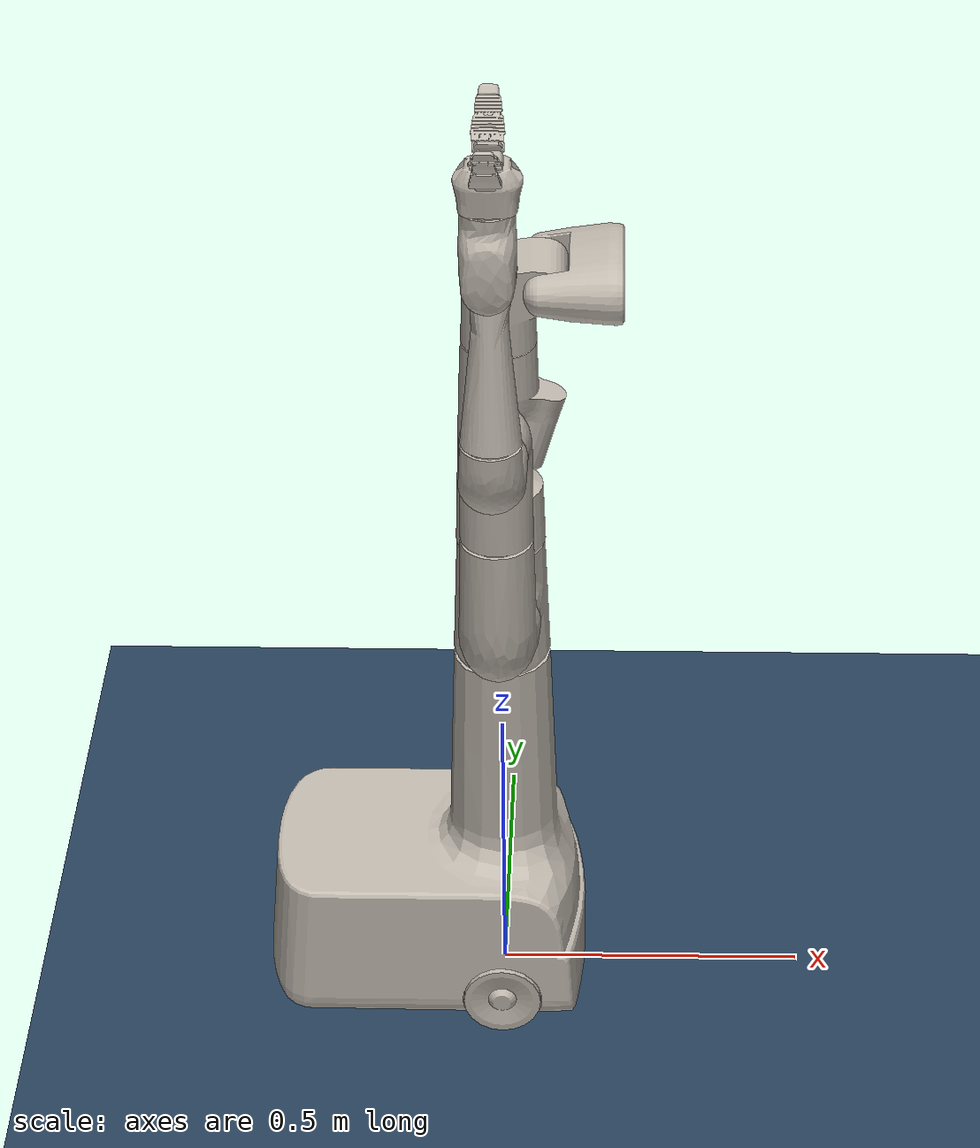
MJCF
<mujoco model="robot scene">
  <include file="robot.xml"/>

  <visual>
    <headlight diffuse="0.6 0.6 0.6" ambient="0.3 0.3 0.3" specular="0 0 0"/>
    <rgba haze="0.15 0.25 0.35 1"/>
    <global azimuth="120" elevation="-20"/>
  </visual>

  <asset>
    <texture type="skybox" builtin="gradient" rgb1="0.3 0.5 0.7" rgb2="0 0 0" width="512" height="3072"/>
    <texture type="2d" name="groundplane" builtin="checker" mark="edge" rgb1="0.2 0.3 0.4" rgb2="0.1 0.2 0.3"
      markrgb="0.8 0.8 0.8" width="300" height="300"/>
    <material name="groundplane" texture="groundplane" texuniform="true" texrepeat="5 5" reflectance="0.2"/>
  </asset>

  <worldbody>
    <light pos="1 -1 1.5" dir="-1 1 -1" diffuse="0.5 0.5 0.5" directional="true"/>
    <geom name="floor" size="0 0 0.05" type="plane" material="groundplane"/>
  </worldbody>
</mujoco>

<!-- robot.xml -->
<mujoco model="robot">
  <compiler angle="radian" assetdir="assets" autolimits="true"/>

  <option timestep="0.004" integrator="implicitfast"/>

  <asset>
    <texture type="2d" name="robot_texture" file="robot_texture.png"/>
    <texture type="2d" name="finger_base_texture" file="finger_base_texture.png"/>
    <texture type="2d" name="finger_tip_texture" file="finger_tip_texture.png"/>
    <material name="robot_mtl" texture="robot_texture"/>
    <material name="finger_base_mtl" texture="finger_base_texture"/>
    <material name="finger_tip_mtl" texture="finger_tip_texture"/>

    <!-- Collision meshes -->
    <mesh file="link_base_0_00.stl"/>
    <mesh file="link_base_0_01.stl"/>
    <mesh file="link_base_1_00.stl"/>
    <mesh file="link_base_1_01.stl"/>
    <mesh file="link_base_1_02.stl"/>
    <mesh file="link_base_1_03.stl"/>
    <mesh file="link_base_1_04.stl"/>
    <mesh file="link_base_1_05.stl"/>
    <mesh file="link_base_1_06.stl"/>
    <mesh file="link_base_1_07.stl"/>
    <mesh file="link_base_1_08.stl"/>
    <mesh file="link_base_1_09.stl"/>
    <mesh file="link_base_1_10.stl"/>
    <mesh file="link_base_1_11.stl"/>
    <mesh file="link_base_1_12.stl"/>
    <mesh file="link_base_1_13.stl"/>
    <mesh file="link_base_1_14.stl"/>
    <mesh file="link_base_1_15.stl"/>
    <mesh file="link_base_1_16.stl"/>
    <mesh file="link_base_1_17.stl"/>
    <mesh file="link_base_1_18.stl"/>
    <mesh file="link_base_1_19.stl"/>
    <mesh file="link_torso_00.stl"/>
    <mesh file="link_torso_01.stl"/>
    <mesh file="link_shoulder.stl"/>
    <mesh file="link_bicep.stl"/>
    <mesh file="link_elbow.stl"/>
    <mesh file="link_forearm.stl"/>
    <mesh file="link_wrist.stl"/>
    <mesh file="link_gripper.stl"/>
    <mesh file="link_head_pan.stl"/>
    <mesh file="link_head_tilt.stl"/>
    <mesh file="link_finger_base.stl"/>
    <mesh file="link_finger_tip.stl"/>

    <!-- Visual meshes -->
    <mesh class="visual" file="link_base_v.obj"/>
    <mesh class="visual" file="link_torso_v.obj"/>
    <mesh class="visual" file="link_shoulder_v.obj"/>
    <mesh class="visual" file="link_bicep_v.obj"/>
    <mesh class="visual" file="link_elbow_v.obj"/>
    <mesh class="visual" file="link_forearm_v.obj"/>
    <mesh class="visual" file="link_wrist_v.obj"/>
    <mesh class="visual" file="link_gripper_v.obj"/>
    <mesh class="visual" file="link_finger_base_v.obj"/>
    <mesh class="visual" file="link_finger_tip_v.obj"/>
    <mesh class="visual" file="link_wheel_v.obj"/>
    <mesh class="visual" file="link_head_pan_v.obj"/>
    <mesh class="visual" file="link_head_tilt_v.obj"/>
  </asset>

  <default>
    <default class="robot">
      <joint damping="10.0" frictionloss="1" armature=".1"/>
      <default class="visual">
        <geom type="mesh" contype="0" conaffinity="0" group="2" material="robot_mtl"/>
      </default>
      <default class="collision">
        <geom type="mesh" rgba="1 1 1 1" group="3" contype="1" conaffinity="1"/>
        <default class="finger_base">
          <geom type="capsule" rgba="1 1 1 1" size="0.015 0.01" quat="1 0 1 0" mass="0.0133245" pos="0 -0.005 0.03"/>
        </default>
        <default class="finger_tip">
          <geom type="capsule" rgba="1 1 1 1" size="0.01 0.008" quat="1 0 1 0" mass="0.0161862"/>
        </default>
      </default>
    </default>
  </default>

  <worldbody>
    <light pos="0 0 3"/>
    <body name="base_link" childclass="robot" pos="0 0 0.06205">
      <!-- geom for base -->
      <geom class="visual" mesh="link_base_v"/>
      <geom class="collision" mesh="link_base_0_00"/>
      <geom class="collision" mesh="link_base_0_01"/>
      <geom class="collision" mesh="link_base_1_00"/>
      <geom class="collision" mesh="link_base_1_01"/>
      <geom class="collision" mesh="link_base_1_02"/>
      <geom class="collision" mesh="link_base_1_03"/>
      <geom class="collision" mesh="link_base_1_04"/>
      <geom class="collision" mesh="link_base_1_05"/>
      <geom class="collision" mesh="link_base_1_06"/>
      <geom class="collision" mesh="link_base_1_07"/>
      <geom class="collision" mesh="link_base_1_08"/>
      <geom class="collision" mesh="link_base_1_09"/>
      <geom class="collision" mesh="link_base_1_10"/>
      <geom class="collision" mesh="link_base_1_11"/>
      <geom class="collision" mesh="link_base_1_12"/>
      <geom class="collision" mesh="link_base_1_13"/>
      <geom class="collision" mesh="link_base_1_14"/>
      <geom class="collision" mesh="link_base_1_15"/>
      <geom class="collision" mesh="link_base_1_16"/>
      <geom class="collision" mesh="link_base_1_17"/>
      <geom class="collision" mesh="link_base_1_18"/>
      <geom class="collision" mesh="link_base_1_19"/>
      <!-- geom for wheels -->
      <geom class="visual" pos="0 0.18283 0" mesh="link_wheel_v"/>
      <geom class="visual" pos="0 -0.18283 0" mesh="link_wheel_v"/>
      <geom class="collision" pos="0 0.18283 0" size="0.06035 0.00925" quat="1 1 0 0" type="cylinder"/>
      <geom class="collision" pos="0 0.18283 0" size="0.06435 5e-06" quat="1 1 0 0" type="cylinder"/>
      <geom class="collision" pos="0 -0.18283 0" size="0.06035 0.00925" quat="1 1 0 0" type="cylinder"/>
      <geom class="collision" pos="0 -0.18283 0" size="0.06435 5e-06" quat="1 1 0 0" type="cylinder"/>
      <geom class="visual" pos="0 0 1.16902" mesh="link_head_pan_v"/>
      <geom class="collision" pos="0 0 1.16902" mesh="link_head_pan"/>
      <geom class="visual" pos="0.07181 0 1.2875" mesh="link_head_tilt_v"/>
      <geom class="collision" pos="0.07181 0 1.2875" mesh="link_head_tilt"/>
      <!-- arm -->
      <body name="link_torso" pos="0 0 0.5945">
        <inertial pos="0 0 0.108398" diaginertia="0.0184592 0.0154173 0.0102031" mass="2.46883"/>
        <joint name="joint_torso" axis="0 0 1" range="-4.49 1.35"/>
        <geom class="visual" mesh="link_torso_v"/>
        <geom class="collision" mesh="link_torso_00"/>
        <geom class="collision" mesh="link_torso_01"/>
        <body name="link_shoulder" pos="0 -0.167289 0.113" gravcomp="1">
          <inertial pos="0.00108994 0.00565406 0.103479" mass="2.08054" diaginertia="0.0162136 0.0158994 0.00367842"/>
          <joint name="joint_shoulder" axis="0 1 0" range="-2.66 3.18"/>
          <geom class="visual" mesh="link_shoulder_v"/>
          <geom class="collision" mesh="link_shoulder"/>
          <body name="link_bicep" pos="0 0.002289 0.215029" gravcomp="1">
            <inertial pos="9.39565e-05 -0.0191308 0.130972" mass="1.3989"
              diaginertia="0.00828463 0.00826766 0.00210613"/>
            <joint name="joint_bicep" axis="0 0 1" range="-2.13 3.71"/>
            <geom class="visual" mesh="link_bicep_v"/>
            <geom class="collision" mesh="link_bicep"/>
            <body name="link_elbow" pos="1.9206e-12 -0.064 0.185036" gravcomp="1">
              <joint name="joint_elbow" axis="0 1 0" range="-2.05 3.79"/>
              <geom class="visual" mesh="link_elbow_v"/>
              <geom class="collision" mesh="link_elbow" mass="0.788999"/>
              <body name="link_forearm" pos="-1.92032e-12 -0.101 0.0914359" gravcomp="1">
                <joint name="joint_forearm" axis="0 0 1" range="-2.92 2.92"/>
                <geom class="visual" mesh="link_forearm_v"/>
                <geom class="collision" mesh="link_forearm" mass="0.819369"/>
                <body name="link_wrist" pos="0 -0.00604 0.2735" gravcomp="1">
                  <site name="wrist" pos="0 0 0.14"/>
                  <joint name="joint_wrist" axis="0 1 0" range="-1.79 1.79"/>
                  <geom class="visual" mesh="link_wrist_v"/>
                  <geom class="collision" mesh="link_wrist" mass="0.543658"/>
                  <body name="link_gripper" pos="0 0.0060384 0.10911" gravcomp="1">
                    <site name="gripper" pos="0 0 0.13" group="5"/>
                    <inertial pos="-3.20302e-05 0.000371384 0.0387883" quat="0.997934 0.0574504 -0.0278948 -0.00699571"
                      mass="0.41474" diaginertia="0.000327698 0.000308611 0.000272392"/>
                    <joint name="joint_gripper" axis="0 0 1" range="-4.49 1.35"/>
                    <geom class="visual" mesh="link_gripper_v"/>
                    <geom class="collision" name="gripper" quat="1 0 0 -1" type="mesh" mesh="link_gripper"/>
                    <!-- right finger -->
                    <body name="link_finger_right" pos="0 0.025 0.05886" quat="0.879969 -0.475032 0 0" gravcomp="1">
                      <joint name="joint_finger_right" axis="1 0 0" range="0.01 1.3" damping="2.0" frictionloss="1"
                        armature=".1"/>
                      <geom class="visual" mesh="link_finger_base_v" material="finger_base_mtl"/>
                      <geom class="collision" mesh="link_finger_base" mass="0.0333245"/>
                      <geom class="finger_base"/>
                      <geom class="finger_base" pos="0 -0.005 0.04"/>
                      <geom class="finger_base" pos="0 -0.005 0.05"/>
                      <body name="link_finger_tip_right" pos="0 -0.0103567 0.0641556" quat="0.995004 0.0998334 0 0"
                        gravcomp="1">
                        <geom class="visual" mesh="link_finger_tip_v" material="finger_tip_mtl"/>
                        <geom class="collision" mesh="link_finger_tip_v" mass="0.0161862"/>
                        <geom class="finger_tip"/>
                        <geom class="finger_tip" pos="0 0 0.01"/>
                        <geom class="finger_tip" pos="0 0 0.02"/>
                        <geom class="finger_tip" pos="0 0 0.03"/>
                        <geom class="finger_tip" pos="0 0 0.04"/>
                      </body>
                    </body>
                    <!-- left finger -->
                    <body name="link_finger_left" pos="0 -0.025 0.05886" quat="0 0 -0.475032 0.879969" gravcomp="1">
                      <joint name="joint_finger_left" axis="1 0 0" range="0.01 1.3" damping="2.0" frictionloss="1"
                        armature=".1"/>
                      <geom class="visual" mesh="link_finger_base_v" material="finger_base_mtl"/>
                      <geom class="collision" mesh="link_finger_base_v" mass="0.0333245"/>
                      <geom class="finger_base"/>
                      <geom class="finger_base" pos="0 -0.005 0.04"/>
                      <geom class="finger_base" pos="0 -0.005 0.05"/>
                      <body name="link_finger_tip_left" pos="0 -0.0103567 0.0641556" quat="0.995004 0.0998334 0 0"
                        gravcomp="1">
                        <geom class="visual" mesh="link_finger_tip_v" material="finger_tip_mtl"/>
                        <geom class="collision" mesh="link_finger_tip" mass="0.0161862"/>
                        <geom class="finger_tip"/>
                        <geom class="finger_tip" pos="0 0 0.01"/>
                        <geom class="finger_tip" pos="0 0 0.02"/>
                        <geom class="finger_tip" pos="0 0 0.03"/>
                        <geom class="finger_tip" pos="0 0 0.04"/>
                      </body>
                    </body>
                  </body>
                  <!-- gripper -->
                </body>
                <!-- wrist -->
              </body>
              <!-- forearm -->
            </body>
            <!-- elbow -->
          </body>
          <!-- bicep -->
        </body>
        <!-- shoulder -->
      </body>
      <!-- torso -->
    </body>
  </worldbody>

  <actuator>
    <position joint="joint_torso" kp="40" ctrlrange="-4.49 1.35" forcerange="-150 150"/>
    <position joint="joint_shoulder" kp="40" ctrlrange="-2.66 3.18" forcerange="-150 150"/>
    <position joint="joint_bicep" kp="40" ctrlrange="-2.13 3.71" forcerange="-30 30"/>
    <position joint="joint_elbow" kp="20" ctrlrange="-2.05 3.79" forcerange="-30 30"/>
    <position joint="joint_forearm" kp="20" ctrlrange="-2.92 2.92" forcerange="-30 30"/>
    <position joint="joint_wrist" kp="10" ctrlrange="-1.79 1.79" forcerange="-30 30"/>
    <position joint="joint_gripper" kp="10" ctrlrange="-4.49 1.35" forcerange="-30 30"/>
    <position joint="joint_finger_right" kp="20" ctrlrange="0.01 1.3" forcerange="-30 30"/>
    <position joint="joint_finger_left" kp="20" ctrlrange="0.01 1.3" forcerange="-30 30"/>
  </actuator>
</mujoco>
